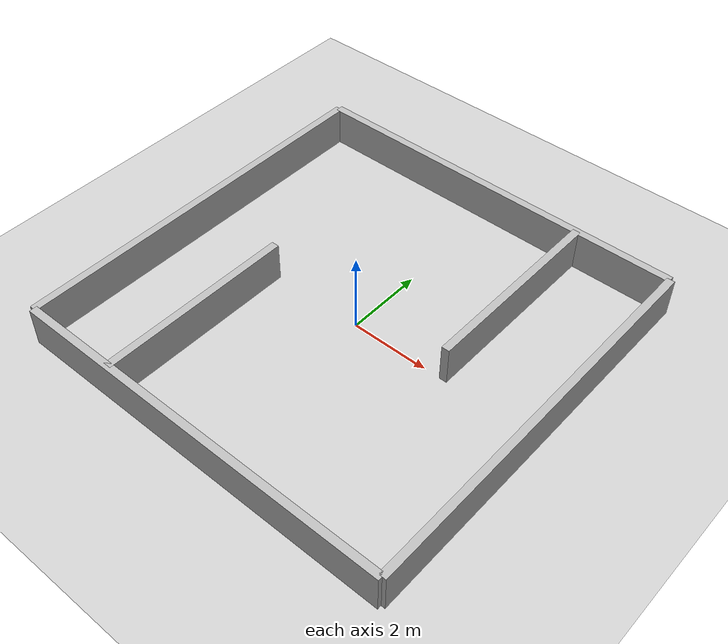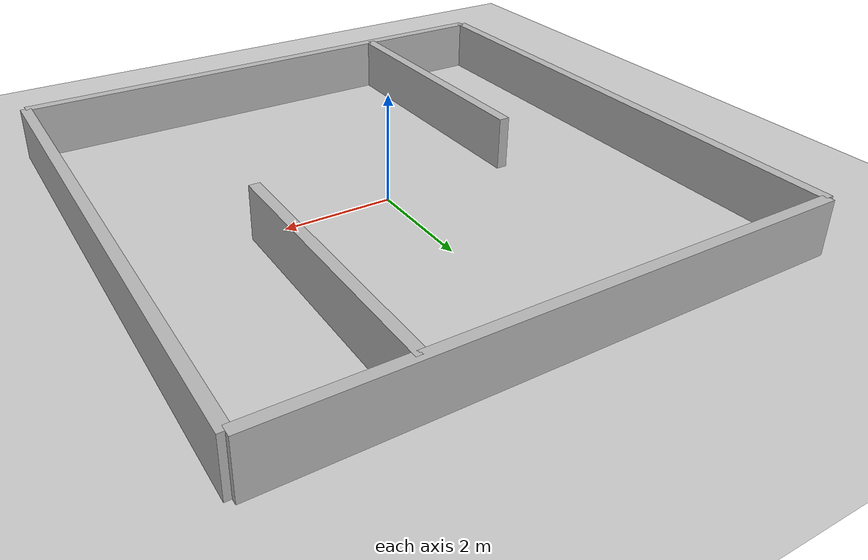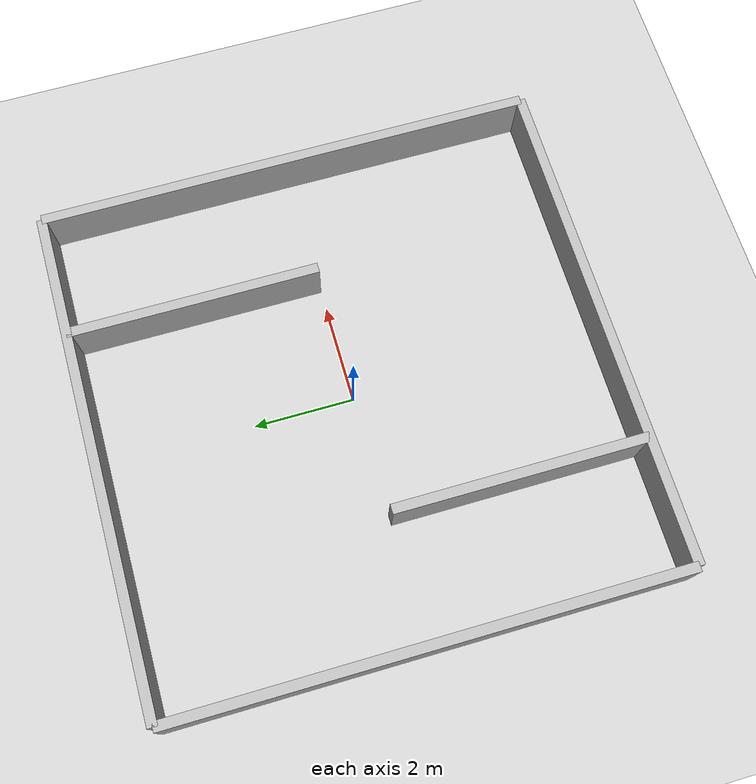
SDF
<?xml version="1.0" ?>
<sdf version="1.6">
  <world name="big_maze">
    <include>
      <uri>model://sun</uri>
    </include>
    <include>
      <uri>model://ground_plane</uri>
    </include>

    <!-- Maze walls -->
    <model name="maze_wall_1">
      <static>true</static>
      <pose>0 5 0.5 0 0 0</pose>
      <link name="link">
        <collision name="collision">
          <geometry>
            <box>
              <size>10 0.2 1</size>
            </box>
          </geometry>
        </collision>
        <visual name="visual">
          <geometry>
            <box>
              <size>10 0.2 1</size>
            </box>
          </geometry>
        </visual>
      </link>
    </model>
    <model name="maze_wall_2">
      <static>true</static>
      <pose>5 0 0.5 0 0 1.57</pose>
      <link name="link">
        <collision name="collision">
          <geometry>
            <box>
              <size>10 0.2 1</size>
            </box>
          </geometry>
        </collision>
        <visual name="visual">
          <geometry>
            <box>
              <size>10 0.2 1</size>
            </box>
          </geometry>
        </visual>
      </link>
    </model>
    <model name="maze_wall_3">
      <static>true</static>
      <pose>0 -5 0.5 0 0 0</pose>
      <link name="link">
        <collision name="collision">
          <geometry>
            <box>
              <size>10 0.2 1</size>
            </box>
          </geometry>
        </collision>
        <visual name="visual">
          <geometry>
            <box>
              <size>10 0.2 1</size>
            </box>
          </geometry>
        </visual>
      </link>
    </model>
    <model name="maze_wall_4">
      <static>true</static>
      <pose>-5 0 0.5 0 0 1.57</pose>
      <link name="link">
        <collision name="collision">
          <geometry>
            <box>
              <size>10 0.2 1</size>
            </box>
          </geometry>
        </collision>
        <visual name="visual">
          <geometry>
            <box>
              <size>10 0.2 1</size>
            </box>
          </geometry>
        </visual>
      </link>
    </model>
    <model name="maze_wall_5">
      <static>true</static>
      <pose>2.5 2.5 0.5 0 0 1.57</pose>
      <link name="link">
        <collision name="collision">
          <geometry>
            <box>
              <size>5 0.2 1</size>
            </box>
          </geometry>
        </collision>
        <visual name="visual">
          <geometry>
            <box>
              <size>5 0.2 1</size>
            </box>
          </geometry>
        </visual>
      </link>
    </model>
    <model name="maze_wall_6">
      <static>true</static>
      <pose>-2.5 -2.5 0.5 0 0 1.57</pose>
      <link name="link">
        <collision name="collision">
          <geometry>
            <box>
              <size>5 0.2 1</size>
            </box>
          </geometry>
        </collision>
        <visual name="visual">
          <geometry>
            <box>
              <size>5 0.2 1</size>
            </box>
          </geometry>
        </visual>
      </link>
    </model>
  </world>
</sdf>
